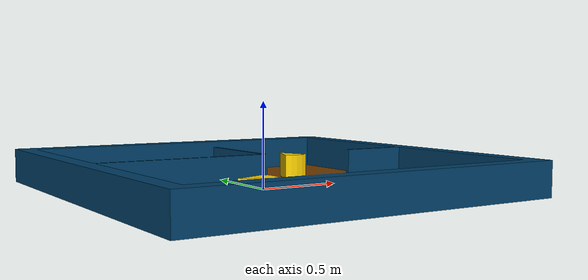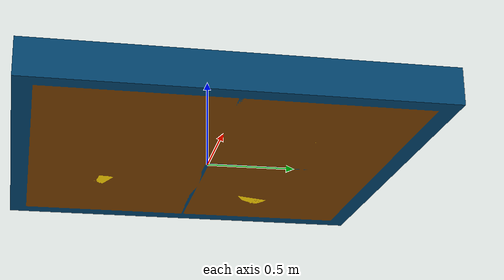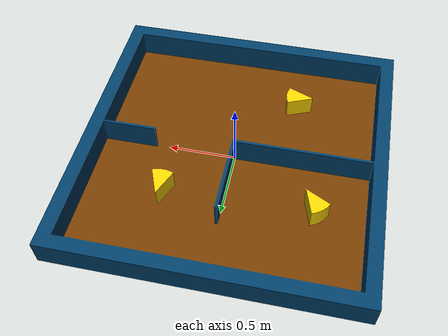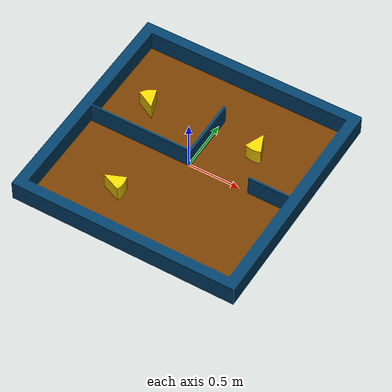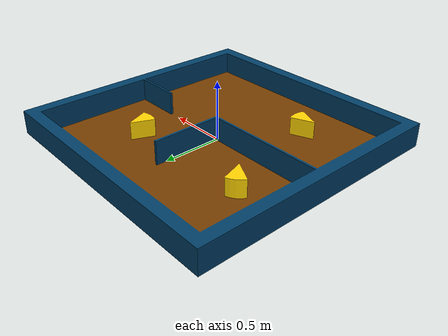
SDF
<?xml version="1.0" ?>
<sdf version="1.5">
  <model name="Cheeze Maze A">
    <static>true</static>
    <link name="link">
      <pose>0 0 0 0 0 0</pose>
      <collision name="collision">
        <geometry>
          <mesh>
            <uri>model://cheeze_maze_a/meshes/maze.dae</uri>
            <scale>1.0 1.0 1.0</scale>
          </mesh>
        </geometry>
        <surface>
          <friction>
            <ode>
              <mu>1</mu>
              <mu2>1</mu2>
              <fdir1>0 0 0</fdir1>
              <slip1>0</slip1>
              <slip2>0</slip2>
            </ode>
          </friction>
        </surface>
      </collision>
      <visual name="visual">
        <geometry>
          <mesh>
            <uri>model://cheeze_maze_a/meshes/maze.dae</uri>
            <scale>1.0 1.0 1.0</scale>
          </mesh>
        </geometry>
      </visual>
    </link>
  </model>
</sdf>
